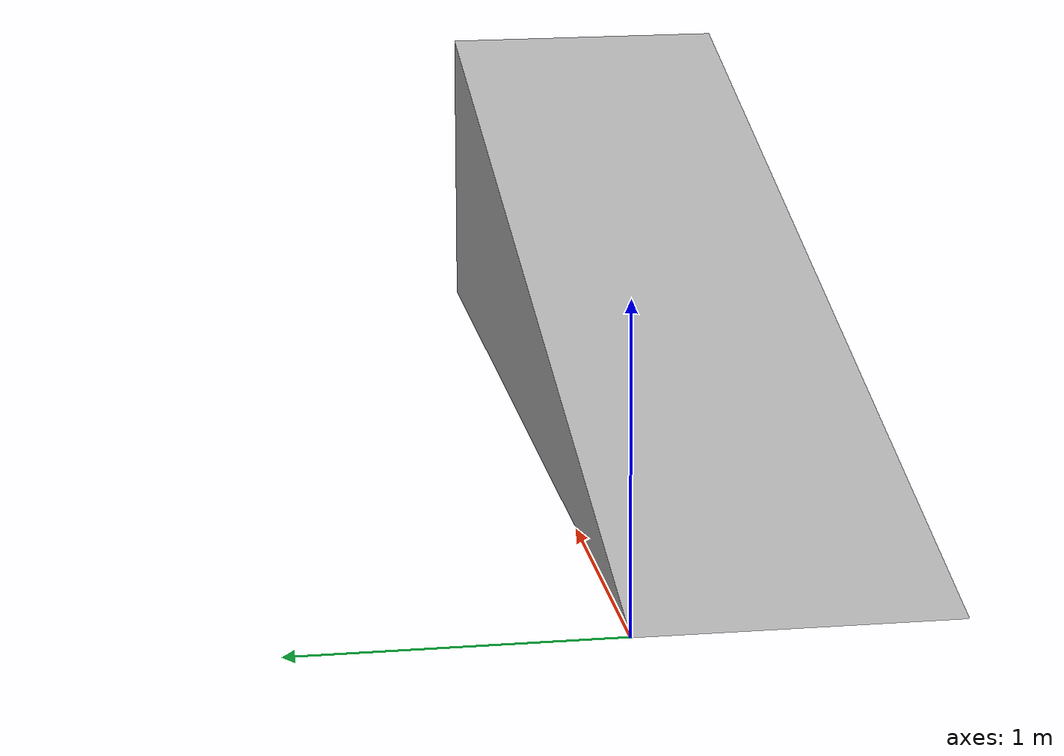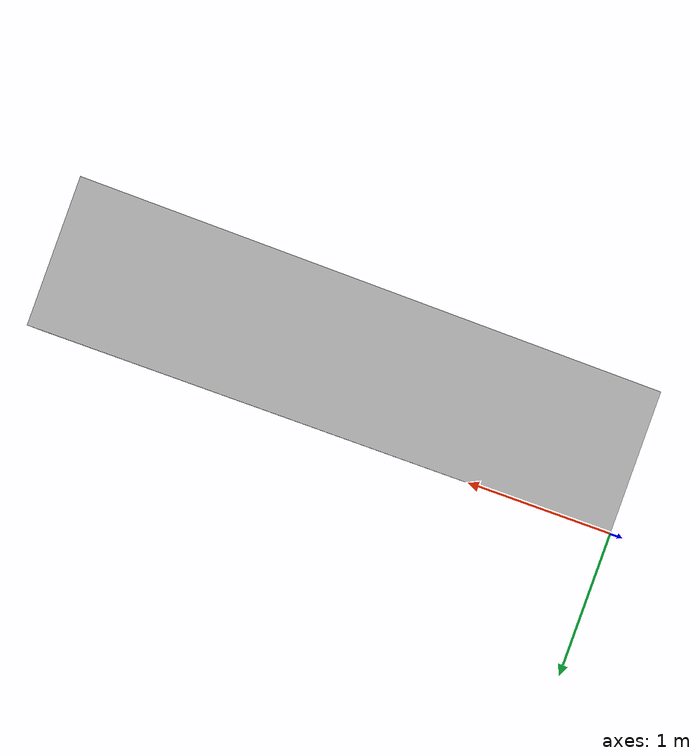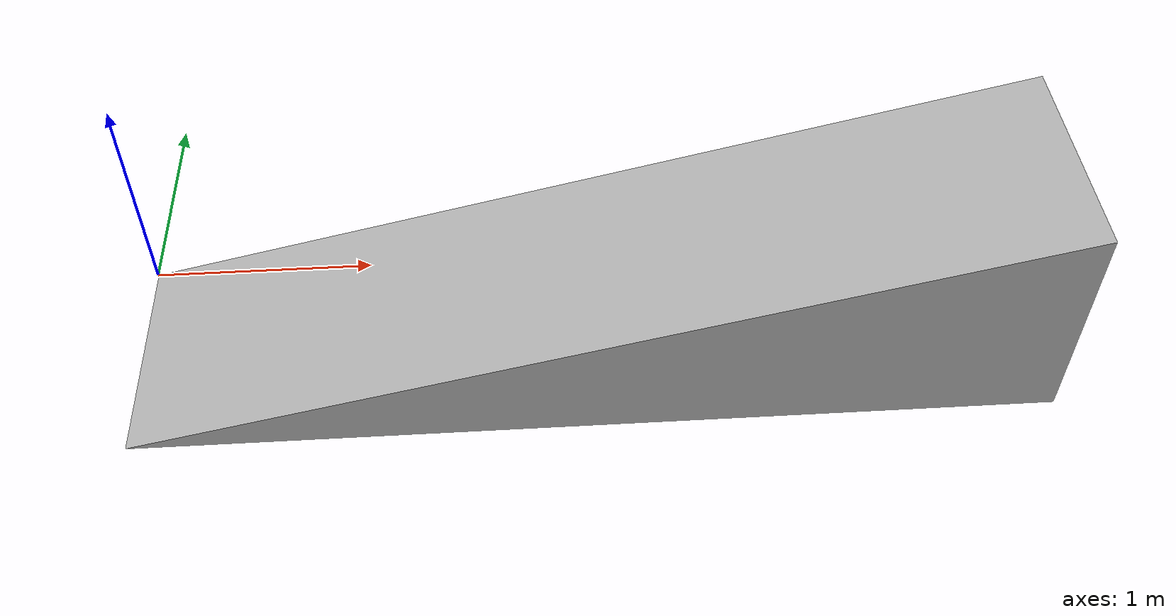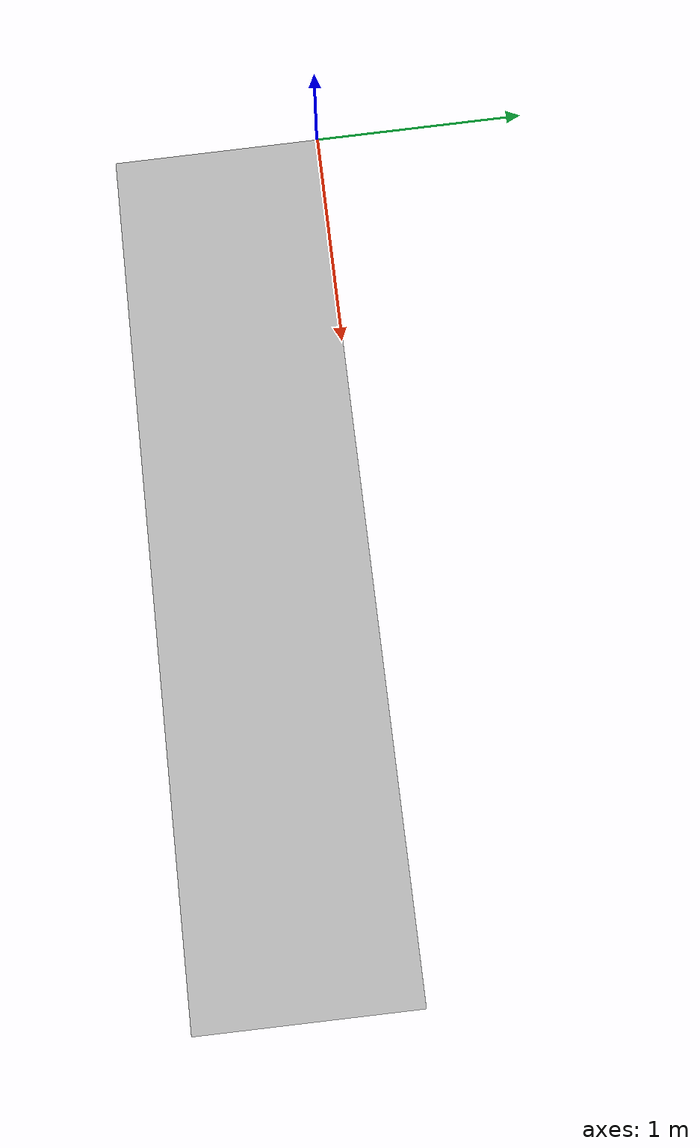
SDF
<?xml version="1.0"?>
<sdf version="1.4">

    <model name="slope">
      <pose>0 0 0  0 0 0</pose>
      <static>true</static>
      <link name="body">
        <visual name="visual">
          <geometry>
            <mesh><uri>file://slope.stl</uri></mesh>
          </geometry>
        </visual>
				<collision name="collision">
					<geometry>
						<mesh><uri>file://slope.stl</uri></mesh>
					</geometry>
				</collision>
			</link>
		</model>

</sdf>
